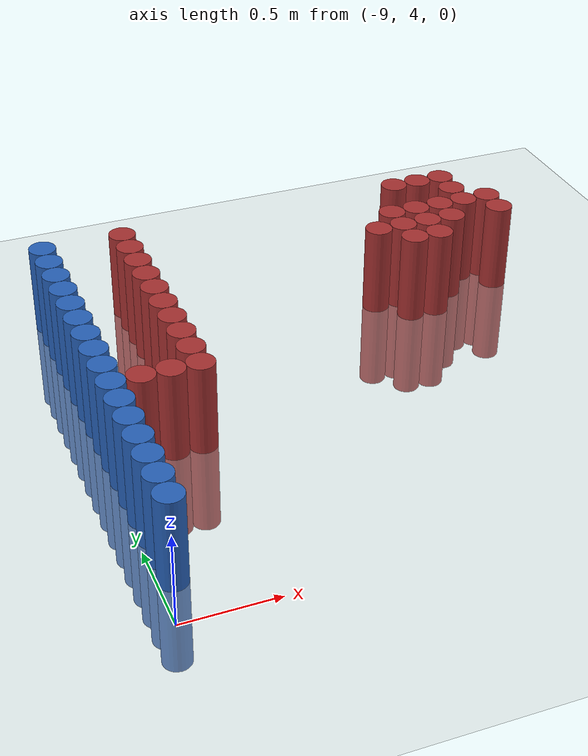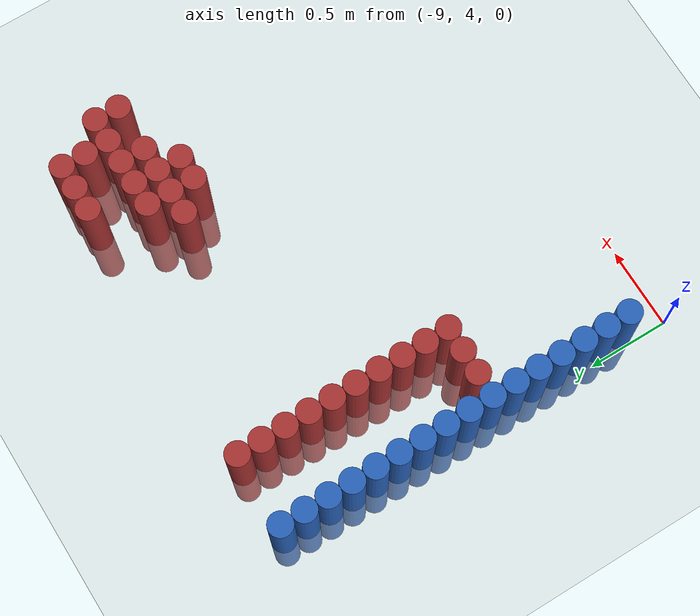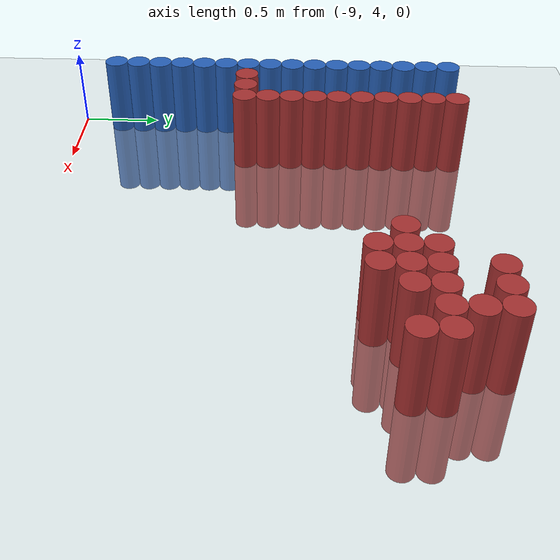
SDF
<sdf version="1.6">
 <world name="default">
  <model name="ground_plane">
   <static>1</static>
   <link name="link">
    <collision name="collision">
     <geometry><plane><normal>0 0 1</normal><size>100 100</size></plane></geometry>
     <surface><friction><ode><mu>100</mu><mu2>50</mu2></ode></friction></surface>
    </collision>
    <visual name="visual">
     <cast_shadows>0</cast_shadows>
     <geometry><plane><normal>0 0 1</normal><size>100 100</size></plane></geometry>
     <material>
      <script><uri>file://media/materials/scripts/gazebo.material</uri><name>Gazebo/Grey</name></script>
     </material>
    </visual>
   </link>
  </model>
  <model name="unit_cylinder_114">
   <static>1</static>
   <pose>-8.925000 4.275000 0.000000 0.000000 0.000000 0.000000</pose>
   <link name="link">
    <inertial>
     <mass>1</mass>
     <inertia><ixx>0.145833</ixx><ixy>0</ixy><ixz>0</ixz><iyy>0.145833</iyy><iyz>0</iyz><izz>0.125</izz></inertia>
    </inertial>
    <collision name="collision">
     <geometry><cylinder><radius>0.075000</radius><length>1</length></cylinder></geometry>
    </collision>
    <visual name="visual">
     <geometry><cylinder><radius>0.075000</radius><length>1</length></cylinder></geometry>
     <material>
      <ambient>0.152000 0.379000 0.720000 1</ambient>
      <diffuse>0.152000 0.379000 0.720000 1</diffuse>
     </material>
     <material>
      <script><name>Gazebo/Grey</name><uri>file://media/materials/scripts/gazebo.material</uri></script>
     </material>
    </visual>
   </link>
  </model>
  <model name="unit_cylinder_116">
   <static>1</static>
   <pose>-8.925000 4.425000 0.000000 0.000000 0.000000 0.000000</pose>
   <link name="link">
    <inertial>
     <mass>1</mass>
     <inertia><ixx>0.145833</ixx><ixy>0</ixy><ixz>0</ixz><iyy>0.145833</iyy><iyz>0</iyz><izz>0.125</izz></inertia>
    </inertial>
    <collision name="collision">
     <geometry><cylinder><radius>0.075000</radius><length>1</length></cylinder></geometry>
    </collision>
    <visual name="visual">
     <geometry><cylinder><radius>0.075000</radius><length>1</length></cylinder></geometry>
     <material>
      <ambient>0.152000 0.379000 0.720000 1</ambient>
      <diffuse>0.152000 0.379000 0.720000 1</diffuse>
     </material>
     <material>
      <script><name>Gazebo/Grey</name><uri>file://media/materials/scripts/gazebo.material</uri></script>
     </material>
    </visual>
   </link>
  </model>
  <model name="unit_cylinder_118">
   <static>1</static>
   <pose>-8.925000 4.575000 0.000000 0.000000 0.000000 0.000000</pose>
   <link name="link">
    <inertial>
     <mass>1</mass>
     <inertia><ixx>0.145833</ixx><ixy>0</ixy><ixz>0</ixz><iyy>0.145833</iyy><iyz>0</iyz><izz>0.125</izz></inertia>
    </inertial>
    <collision name="collision">
     <geometry><cylinder><radius>0.075000</radius><length>1</length></cylinder></geometry>
    </collision>
    <visual name="visual">
     <geometry><cylinder><radius>0.075000</radius><length>1</length></cylinder></geometry>
     <material>
      <ambient>0.152000 0.379000 0.720000 1</ambient>
      <diffuse>0.152000 0.379000 0.720000 1</diffuse>
     </material>
     <material>
      <script><name>Gazebo/Grey</name><uri>file://media/materials/scripts/gazebo.material</uri></script>
     </material>
    </visual>
   </link>
  </model>
  <model name="unit_cylinder_120">
   <static>1</static>
   <pose>-8.925000 4.725000 0.000000 0.000000 0.000000 0.000000</pose>
   <link name="link">
    <inertial>
     <mass>1</mass>
     <inertia><ixx>0.145833</ixx><ixy>0</ixy><ixz>0</ixz><iyy>0.145833</iyy><iyz>0</iyz><izz>0.125</izz></inertia>
    </inertial>
    <collision name="collision">
     <geometry><cylinder><radius>0.075000</radius><length>1</length></cylinder></geometry>
    </collision>
    <visual name="visual">
     <geometry><cylinder><radius>0.075000</radius><length>1</length></cylinder></geometry>
     <material>
      <ambient>0.152000 0.379000 0.720000 1</ambient>
      <diffuse>0.152000 0.379000 0.720000 1</diffuse>
     </material>
     <material>
      <script><name>Gazebo/Grey</name><uri>file://media/materials/scripts/gazebo.material</uri></script>
     </material>
    </visual>
   </link>
  </model>
  <model name="unit_cylinder_122">
   <static>1</static>
   <pose>-8.925000 4.875000 0.000000 0.000000 0.000000 0.000000</pose>
   <link name="link">
    <inertial>
     <mass>1</mass>
     <inertia><ixx>0.145833</ixx><ixy>0</ixy><ixz>0</ixz><iyy>0.145833</iyy><iyz>0</iyz><izz>0.125</izz></inertia>
    </inertial>
    <collision name="collision">
     <geometry><cylinder><radius>0.075000</radius><length>1</length></cylinder></geometry>
    </collision>
    <visual name="visual">
     <geometry><cylinder><radius>0.075000</radius><length>1</length></cylinder></geometry>
     <material>
      <ambient>0.152000 0.379000 0.720000 1</ambient>
      <diffuse>0.152000 0.379000 0.720000 1</diffuse>
     </material>
     <material>
      <script><name>Gazebo/Grey</name><uri>file://media/materials/scripts/gazebo.material</uri></script>
     </material>
    </visual>
   </link>
  </model>
  <model name="unit_cylinder_124">
   <static>1</static>
   <pose>-8.925000 5.025000 0.000000 0.000000 0.000000 0.000000</pose>
   <link name="link">
    <inertial>
     <mass>1</mass>
     <inertia><ixx>0.145833</ixx><ixy>0</ixy><ixz>0</ixz><iyy>0.145833</iyy><iyz>0</iyz><izz>0.125</izz></inertia>
    </inertial>
    <collision name="collision">
     <geometry><cylinder><radius>0.075000</radius><length>1</length></cylinder></geometry>
    </collision>
    <visual name="visual">
     <geometry><cylinder><radius>0.075000</radius><length>1</length></cylinder></geometry>
     <material>
      <ambient>0.152000 0.379000 0.720000 1</ambient>
      <diffuse>0.152000 0.379000 0.720000 1</diffuse>
     </material>
     <material>
      <script><name>Gazebo/Grey</name><uri>file://media/materials/scripts/gazebo.material</uri></script>
     </material>
    </visual>
   </link>
  </model>
  <model name="unit_cylinder_125">
   <static>1</static>
   <pose>-8.925000 5.175000 0.000000 0.000000 0.000000 0.000000</pose>
   <link name="link">
    <inertial>
     <mass>1</mass>
     <inertia><ixx>0.145833</ixx><ixy>0</ixy><ixz>0</ixz><iyy>0.145833</iyy><iyz>0</iyz><izz>0.125</izz></inertia>
    </inertial>
    <collision name="collision">
     <geometry><cylinder><radius>0.075000</radius><length>1</length></cylinder></geometry>
    </collision>
    <visual name="visual">
     <geometry><cylinder><radius>0.075000</radius><length>1</length></cylinder></geometry>
     <material>
      <ambient>0.152000 0.379000 0.720000 1</ambient>
      <diffuse>0.152000 0.379000 0.720000 1</diffuse>
     </material>
     <material>
      <script><name>Gazebo/Grey</name><uri>file://media/materials/scripts/gazebo.material</uri></script>
     </material>
    </visual>
   </link>
  </model>
  <model name="unit_cylinder_126">
   <static>1</static>
   <pose>-8.925000 5.325000 0.000000 0.000000 0.000000 0.000000</pose>
   <link name="link">
    <inertial>
     <mass>1</mass>
     <inertia><ixx>0.145833</ixx><ixy>0</ixy><ixz>0</ixz><iyy>0.145833</iyy><iyz>0</iyz><izz>0.125</izz></inertia>
    </inertial>
    <collision name="collision">
     <geometry><cylinder><radius>0.075000</radius><length>1</length></cylinder></geometry>
    </collision>
    <visual name="visual">
     <geometry><cylinder><radius>0.075000</radius><length>1</length></cylinder></geometry>
     <material>
      <ambient>0.152000 0.379000 0.720000 1</ambient>
      <diffuse>0.152000 0.379000 0.720000 1</diffuse>
     </material>
     <material>
      <script><name>Gazebo/Grey</name><uri>file://media/materials/scripts/gazebo.material</uri></script>
     </material>
    </visual>
   </link>
  </model>
  <model name="unit_cylinder_127">
   <static>1</static>
   <pose>-8.925000 5.475000 0.000000 0.000000 0.000000 0.000000</pose>
   <link name="link">
    <inertial>
     <mass>1</mass>
     <inertia><ixx>0.145833</ixx><ixy>0</ixy><ixz>0</ixz><iyy>0.145833</iyy><iyz>0</iyz><izz>0.125</izz></inertia>
    </inertial>
    <collision name="collision">
     <geometry><cylinder><radius>0.075000</radius><length>1</length></cylinder></geometry>
    </collision>
    <visual name="visual">
     <geometry><cylinder><radius>0.075000</radius><length>1</length></cylinder></geometry>
     <material>
      <ambient>0.152000 0.379000 0.720000 1</ambient>
      <diffuse>0.152000 0.379000 0.720000 1</diffuse>
     </material>
     <material>
      <script><name>Gazebo/Grey</name><uri>file://media/materials/scripts/gazebo.material</uri></script>
     </material>
    </visual>
   </link>
  </model>
  <model name="unit_cylinder_128">
   <static>1</static>
   <pose>-8.925000 5.625000 0.000000 0.000000 0.000000 0.000000</pose>
   <link name="link">
    <inertial>
     <mass>1</mass>
     <inertia><ixx>0.145833</ixx><ixy>0</ixy><ixz>0</ixz><iyy>0.145833</iyy><iyz>0</iyz><izz>0.125</izz></inertia>
    </inertial>
    <collision name="collision">
     <geometry><cylinder><radius>0.075000</radius><length>1</length></cylinder></geometry>
    </collision>
    <visual name="visual">
     <geometry><cylinder><radius>0.075000</radius><length>1</length></cylinder></geometry>
     <material>
      <ambient>0.152000 0.379000 0.720000 1</ambient>
      <diffuse>0.152000 0.379000 0.720000 1</diffuse>
     </material>
     <material>
      <script><name>Gazebo/Grey</name><uri>file://media/materials/scripts/gazebo.material</uri></script>
     </material>
    </visual>
   </link>
  </model>
  <model name="unit_cylinder_129">
   <static>1</static>
   <pose>-8.925000 5.775000 0.000000 0.000000 0.000000 0.000000</pose>
   <link name="link">
    <inertial>
     <mass>1</mass>
     <inertia><ixx>0.145833</ixx><ixy>0</ixy><ixz>0</ixz><iyy>0.145833</iyy><iyz>0</iyz><izz>0.125</izz></inertia>
    </inertial>
    <collision name="collision">
     <geometry><cylinder><radius>0.075000</radius><length>1</length></cylinder></geometry>
    </collision>
    <visual name="visual">
     <geometry><cylinder><radius>0.075000</radius><length>1</length></cylinder></geometry>
     <material>
      <ambient>0.152000 0.379000 0.720000 1</ambient>
      <diffuse>0.152000 0.379000 0.720000 1</diffuse>
     </material>
     <material>
      <script><name>Gazebo/Grey</name><uri>file://media/materials/scripts/gazebo.material</uri></script>
     </material>
    </visual>
   </link>
  </model>
  <model name="unit_cylinder_130">
   <static>1</static>
   <pose>-8.925000 5.925000 0.000000 0.000000 0.000000 0.000000</pose>
   <link name="link">
    <inertial>
     <mass>1</mass>
     <inertia><ixx>0.145833</ixx><ixy>0</ixy><ixz>0</ixz><iyy>0.145833</iyy><iyz>0</iyz><izz>0.125</izz></inertia>
    </inertial>
    <collision name="collision">
     <geometry><cylinder><radius>0.075000</radius><length>1</length></cylinder></geometry>
    </collision>
    <visual name="visual">
     <geometry><cylinder><radius>0.075000</radius><length>1</length></cylinder></geometry>
     <material>
      <ambient>0.152000 0.379000 0.720000 1</ambient>
      <diffuse>0.152000 0.379000 0.720000 1</diffuse>
     </material>
     <material>
      <script><name>Gazebo/Grey</name><uri>file://media/materials/scripts/gazebo.material</uri></script>
     </material>
    </visual>
   </link>
  </model>
  <model name="unit_cylinder_131">
   <static>1</static>
   <pose>-8.925000 6.075000 0.000000 0.000000 0.000000 0.000000</pose>
   <link name="link">
    <inertial>
     <mass>1</mass>
     <inertia><ixx>0.145833</ixx><ixy>0</ixy><ixz>0</ixz><iyy>0.145833</iyy><iyz>0</iyz><izz>0.125</izz></inertia>
    </inertial>
    <collision name="collision">
     <geometry><cylinder><radius>0.075000</radius><length>1</length></cylinder></geometry>
    </collision>
    <visual name="visual">
     <geometry><cylinder><radius>0.075000</radius><length>1</length></cylinder></geometry>
     <material>
      <ambient>0.152000 0.379000 0.720000 1</ambient>
      <diffuse>0.152000 0.379000 0.720000 1</diffuse>
     </material>
     <material>
      <script><name>Gazebo/Grey</name><uri>file://media/materials/scripts/gazebo.material</uri></script>
     </material>
    </visual>
   </link>
  </model>
  <model name="unit_cylinder_132">
   <static>1</static>
   <pose>-8.925000 6.225000 0.000000 0.000000 0.000000 0.000000</pose>
   <link name="link">
    <inertial>
     <mass>1</mass>
     <inertia><ixx>0.145833</ixx><ixy>0</ixy><ixz>0</ixz><iyy>0.145833</iyy><iyz>0</iyz><izz>0.125</izz></inertia>
    </inertial>
    <collision name="collision">
     <geometry><cylinder><radius>0.075000</radius><length>1</length></cylinder></geometry>
    </collision>
    <visual name="visual">
     <geometry><cylinder><radius>0.075000</radius><length>1</length></cylinder></geometry>
     <material>
      <ambient>0.152000 0.379000 0.720000 1</ambient>
      <diffuse>0.152000 0.379000 0.720000 1</diffuse>
     </material>
     <material>
      <script><name>Gazebo/Grey</name><uri>file://media/materials/scripts/gazebo.material</uri></script>
     </material>
    </visual>
   </link>
  </model>
  <model name="unit_cylinder_133">
   <static>1</static>
   <pose>-8.925000 6.375000 0.000000 0.000000 0.000000 0.000000</pose>
   <link name="link">
    <inertial>
     <mass>1</mass>
     <inertia><ixx>0.145833</ixx><ixy>0</ixy><ixz>0</ixz><iyy>0.145833</iyy><iyz>0</iyz><izz>0.125</izz></inertia>
    </inertial>
    <collision name="collision">
     <geometry><cylinder><radius>0.075000</radius><length>1</length></cylinder></geometry>
    </collision>
    <visual name="visual">
     <geometry><cylinder><radius>0.075000</radius><length>1</length></cylinder></geometry>
     <material>
      <ambient>0.152000 0.379000 0.720000 1</ambient>
      <diffuse>0.152000 0.379000 0.720000 1</diffuse>
     </material>
     <material>
      <script><name>Gazebo/Grey</name><uri>file://media/materials/scripts/gazebo.material</uri></script>
     </material>
    </visual>
   </link>
  </model>
  <model name="unit_cylinder_134">
   <static>1</static>
   <pose>-8.925000 6.525000 0.000000 0.000000 0.000000 0.000000</pose>
   <link name="link">
    <inertial>
     <mass>1</mass>
     <inertia><ixx>0.145833</ixx><ixy>0</ixy><ixz>0</ixz><iyy>0.145833</iyy><iyz>0</iyz><izz>0.125</izz></inertia>
    </inertial>
    <collision name="collision">
     <geometry><cylinder><radius>0.075000</radius><length>1</length></cylinder></geometry>
    </collision>
    <visual name="visual">
     <geometry><cylinder><radius>0.075000</radius><length>1</length></cylinder></geometry>
     <material>
      <ambient>0.152000 0.379000 0.720000 1</ambient>
      <diffuse>0.152000 0.379000 0.720000 1</diffuse>
     </material>
     <material>
      <script><name>Gazebo/Grey</name><uri>file://media/materials/scripts/gazebo.material</uri></script>
     </material>
    </visual>
   </link>
  </model>
  <model name="unit_cylinder_155">
   <static>1</static>
   <pose>-8.775000 5.175000 0.000000 0.000000 0.000000 0.000000</pose>
   <link name="link">
    <inertial>
     <mass>1</mass>
     <inertia><ixx>0.145833</ixx><ixy>0</ixy><ixz>0</ixz><iyy>0.145833</iyy><iyz>0</iyz><izz>0.125</izz></inertia>
    </inertial>
    <collision name="collision">
     <geometry><cylinder><radius>0.075000</radius><length>1</length></cylinder></geometry>
    </collision>
    <visual name="visual">
     <geometry><cylinder><radius>0.075000</radius><length>1</length></cylinder></geometry>
     <material>
      <ambient>0.648000 0.192000 0.192000 1</ambient>
      <diffuse>0.648000 0.192000 0.192000 1</diffuse>
     </material>
     <material>
      <script><name>Gazebo/Grey</name><uri>file://media/materials/scripts/gazebo.material</uri></script>
     </material>
    </visual>
   </link>
  </model>
  <model name="unit_cylinder_157">
   <static>1</static>
   <pose>-8.625000 5.175000 0.000000 0.000000 0.000000 0.000000</pose>
   <link name="link">
    <inertial>
     <mass>1</mass>
     <inertia><ixx>0.145833</ixx><ixy>0</ixy><ixz>0</ixz><iyy>0.145833</iyy><iyz>0</iyz><izz>0.125</izz></inertia>
    </inertial>
    <collision name="collision">
     <geometry><cylinder><radius>0.075000</radius><length>1</length></cylinder></geometry>
    </collision>
    <visual name="visual">
     <geometry><cylinder><radius>0.075000</radius><length>1</length></cylinder></geometry>
     <material>
      <ambient>0.648000 0.192000 0.192000 1</ambient>
      <diffuse>0.648000 0.192000 0.192000 1</diffuse>
     </material>
     <material>
      <script><name>Gazebo/Grey</name><uri>file://media/materials/scripts/gazebo.material</uri></script>
     </material>
    </visual>
   </link>
  </model>
  <model name="unit_cylinder_159">
   <static>1</static>
   <pose>-8.475000 5.175000 0.000000 0.000000 0.000000 0.000000</pose>
   <link name="link">
    <inertial>
     <mass>1</mass>
     <inertia><ixx>0.145833</ixx><ixy>0</ixy><ixz>0</ixz><iyy>0.145833</iyy><iyz>0</iyz><izz>0.125</izz></inertia>
    </inertial>
    <collision name="collision">
     <geometry><cylinder><radius>0.075000</radius><length>1</length></cylinder></geometry>
    </collision>
    <visual name="visual">
     <geometry><cylinder><radius>0.075000</radius><length>1</length></cylinder></geometry>
     <material>
      <ambient>0.648000 0.192000 0.192000 1</ambient>
      <diffuse>0.648000 0.192000 0.192000 1</diffuse>
     </material>
     <material>
      <script><name>Gazebo/Grey</name><uri>file://media/materials/scripts/gazebo.material</uri></script>
     </material>
    </visual>
   </link>
  </model>
  <model name="unit_cylinder_160">
   <static>1</static>
   <pose>-8.475000 5.325000 0.000000 0.000000 0.000000 0.000000</pose>
   <link name="link">
    <inertial>
     <mass>1</mass>
     <inertia><ixx>0.145833</ixx><ixy>0</ixy><ixz>0</ixz><iyy>0.145833</iyy><iyz>0</iyz><izz>0.125</izz></inertia>
    </inertial>
    <collision name="collision">
     <geometry><cylinder><radius>0.075000</radius><length>1</length></cylinder></geometry>
    </collision>
    <visual name="visual">
     <geometry><cylinder><radius>0.075000</radius><length>1</length></cylinder></geometry>
     <material>
      <ambient>0.648000 0.192000 0.192000 1</ambient>
      <diffuse>0.648000 0.192000 0.192000 1</diffuse>
     </material>
     <material>
      <script><name>Gazebo/Grey</name><uri>file://media/materials/scripts/gazebo.material</uri></script>
     </material>
    </visual>
   </link>
  </model>
  <model name="unit_cylinder_161">
   <static>1</static>
   <pose>-8.475000 5.475000 0.000000 0.000000 0.000000 0.000000</pose>
   <link name="link">
    <inertial>
     <mass>1</mass>
     <inertia><ixx>0.145833</ixx><ixy>0</ixy><ixz>0</ixz><iyy>0.145833</iyy><iyz>0</iyz><izz>0.125</izz></inertia>
    </inertial>
    <collision name="collision">
     <geometry><cylinder><radius>0.075000</radius><length>1</length></cylinder></geometry>
    </collision>
    <visual name="visual">
     <geometry><cylinder><radius>0.075000</radius><length>1</length></cylinder></geometry>
     <material>
      <ambient>0.648000 0.192000 0.192000 1</ambient>
      <diffuse>0.648000 0.192000 0.192000 1</diffuse>
     </material>
     <material>
      <script><name>Gazebo/Grey</name><uri>file://media/materials/scripts/gazebo.material</uri></script>
     </material>
    </visual>
   </link>
  </model>
  <model name="unit_cylinder_162">
   <static>1</static>
   <pose>-8.475000 5.625000 0.000000 0.000000 0.000000 0.000000</pose>
   <link name="link">
    <inertial>
     <mass>1</mass>
     <inertia><ixx>0.145833</ixx><ixy>0</ixy><ixz>0</ixz><iyy>0.145833</iyy><iyz>0</iyz><izz>0.125</izz></inertia>
    </inertial>
    <collision name="collision">
     <geometry><cylinder><radius>0.075000</radius><length>1</length></cylinder></geometry>
    </collision>
    <visual name="visual">
     <geometry><cylinder><radius>0.075000</radius><length>1</length></cylinder></geometry>
     <material>
      <ambient>0.648000 0.192000 0.192000 1</ambient>
      <diffuse>0.648000 0.192000 0.192000 1</diffuse>
     </material>
     <material>
      <script><name>Gazebo/Grey</name><uri>file://media/materials/scripts/gazebo.material</uri></script>
     </material>
    </visual>
   </link>
  </model>
  <model name="unit_cylinder_163">
   <static>1</static>
   <pose>-8.475000 5.775000 0.000000 0.000000 0.000000 0.000000</pose>
   <link name="link">
    <inertial>
     <mass>1</mass>
     <inertia><ixx>0.145833</ixx><ixy>0</ixy><ixz>0</ixz><iyy>0.145833</iyy><iyz>0</iyz><izz>0.125</izz></inertia>
    </inertial>
    <collision name="collision">
     <geometry><cylinder><radius>0.075000</radius><length>1</length></cylinder></geometry>
    </collision>
    <visual name="visual">
     <geometry><cylinder><radius>0.075000</radius><length>1</length></cylinder></geometry>
     <material>
      <ambient>0.648000 0.192000 0.192000 1</ambient>
      <diffuse>0.648000 0.192000 0.192000 1</diffuse>
     </material>
     <material>
      <script><name>Gazebo/Grey</name><uri>file://media/materials/scripts/gazebo.material</uri></script>
     </material>
    </visual>
   </link>
  </model>
  <model name="unit_cylinder_164">
   <static>1</static>
   <pose>-8.475000 5.925000 0.000000 0.000000 0.000000 0.000000</pose>
   <link name="link">
    <inertial>
     <mass>1</mass>
     <inertia><ixx>0.145833</ixx><ixy>0</ixy><ixz>0</ixz><iyy>0.145833</iyy><iyz>0</iyz><izz>0.125</izz></inertia>
    </inertial>
    <collision name="collision">
     <geometry><cylinder><radius>0.075000</radius><length>1</length></cylinder></geometry>
    </collision>
    <visual name="visual">
     <geometry><cylinder><radius>0.075000</radius><length>1</length></cylinder></geometry>
     <material>
      <ambient>0.648000 0.192000 0.192000 1</ambient>
      <diffuse>0.648000 0.192000 0.192000 1</diffuse>
     </material>
     <material>
      <script><name>Gazebo/Grey</name><uri>file://media/materials/scripts/gazebo.material</uri></script>
     </material>
    </visual>
   </link>
  </model>
  <model name="unit_cylinder_165">
   <static>1</static>
   <pose>-8.475000 6.075000 0.000000 0.000000 0.000000 0.000000</pose>
   <link name="link">
    <inertial>
     <mass>1</mass>
     <inertia><ixx>0.145833</ixx><ixy>0</ixy><ixz>0</ixz><iyy>0.145833</iyy><iyz>0</iyz><izz>0.125</izz></inertia>
    </inertial>
    <collision name="collision">
     <geometry><cylinder><radius>0.075000</radius><length>1</length></cylinder></geometry>
    </collision>
    <visual name="visual">
     <geometry><cylinder><radius>0.075000</radius><length>1</length></cylinder></geometry>
     <material>
      <ambient>0.648000 0.192000 0.192000 1</ambient>
      <diffuse>0.648000 0.192000 0.192000 1</diffuse>
     </material>
     <material>
      <script><name>Gazebo/Grey</name><uri>file://media/materials/scripts/gazebo.material</uri></script>
     </material>
    </visual>
   </link>
  </model>
  <model name="unit_cylinder_166">
   <static>1</static>
   <pose>-8.475000 6.225000 0.000000 0.000000 0.000000 0.000000</pose>
   <link name="link">
    <inertial>
     <mass>1</mass>
     <inertia><ixx>0.145833</ixx><ixy>0</ixy><ixz>0</ixz><iyy>0.145833</iyy><iyz>0</iyz><izz>0.125</izz></inertia>
    </inertial>
    <collision name="collision">
     <geometry><cylinder><radius>0.075000</radius><length>1</length></cylinder></geometry>
    </collision>
    <visual name="visual">
     <geometry><cylinder><radius>0.075000</radius><length>1</length></cylinder></geometry>
     <material>
      <ambient>0.648000 0.192000 0.192000 1</ambient>
      <diffuse>0.648000 0.192000 0.192000 1</diffuse>
     </material>
     <material>
      <script><name>Gazebo/Grey</name><uri>file://media/materials/scripts/gazebo.material</uri></script>
     </material>
    </visual>
   </link>
  </model>
  <model name="unit_cylinder_167">
   <static>1</static>
   <pose>-8.475000 6.375000 0.000000 0.000000 0.000000 0.000000</pose>
   <link name="link">
    <inertial>
     <mass>1</mass>
     <inertia><ixx>0.145833</ixx><ixy>0</ixy><ixz>0</ixz><iyy>0.145833</iyy><iyz>0</iyz><izz>0.125</izz></inertia>
    </inertial>
    <collision name="collision">
     <geometry><cylinder><radius>0.075000</radius><length>1</length></cylinder></geometry>
    </collision>
    <visual name="visual">
     <geometry><cylinder><radius>0.075000</radius><length>1</length></cylinder></geometry>
     <material>
      <ambient>0.648000 0.192000 0.192000 1</ambient>
      <diffuse>0.648000 0.192000 0.192000 1</diffuse>
     </material>
     <material>
      <script><name>Gazebo/Grey</name><uri>file://media/materials/scripts/gazebo.material</uri></script>
     </material>
    </visual>
   </link>
  </model>
  <model name="unit_cylinder_168">
   <static>1</static>
   <pose>-8.475000 6.525000 0.000000 0.000000 0.000000 0.000000</pose>
   <link name="link">
    <inertial>
     <mass>1</mass>
     <inertia><ixx>0.145833</ixx><ixy>0</ixy><ixz>0</ixz><iyy>0.145833</iyy><iyz>0</iyz><izz>0.125</izz></inertia>
    </inertial>
    <collision name="collision">
     <geometry><cylinder><radius>0.075000</radius><length>1</length></cylinder></geometry>
    </collision>
    <visual name="visual">
     <geometry><cylinder><radius>0.075000</radius><length>1</length></cylinder></geometry>
     <material>
      <ambient>0.648000 0.192000 0.192000 1</ambient>
      <diffuse>0.648000 0.192000 0.192000 1</diffuse>
     </material>
     <material>
      <script><name>Gazebo/Grey</name><uri>file://media/materials/scripts/gazebo.material</uri></script>
     </material>
    </visual>
   </link>
  </model>
  <model name="unit_cylinder_201">
   <static>1</static>
   <pose>-7.125000 6.075000 0.000000 0.000000 0.000000 0.000000</pose>
   <link name="link">
    <inertial>
     <mass>1</mass>
     <inertia><ixx>0.145833</ixx><ixy>0</ixy><ixz>0</ixz><iyy>0.145833</iyy><iyz>0</iyz><izz>0.125</izz></inertia>
    </inertial>
    <collision name="collision">
     <geometry><cylinder><radius>0.075000</radius><length>1</length></cylinder></geometry>
    </collision>
    <visual name="visual">
     <geometry><cylinder><radius>0.075000</radius><length>1</length></cylinder></geometry>
     <material>
      <ambient>0.648000 0.192000 0.192000 1</ambient>
      <diffuse>0.648000 0.192000 0.192000 1</diffuse>
     </material>
     <material>
      <script><name>Gazebo/Grey</name><uri>file://media/materials/scripts/gazebo.material</uri></script>
     </material>
    </visual>
   </link>
  </model>
  <model name="unit_cylinder_203">
   <static>1</static>
   <pose>-6.975000 5.925000 0.000000 0.000000 0.000000 0.000000</pose>
   <link name="link">
    <inertial>
     <mass>1</mass>
     <inertia><ixx>0.145833</ixx><ixy>0</ixy><ixz>0</ixz><iyy>0.145833</iyy><iyz>0</iyz><izz>0.125</izz></inertia>
    </inertial>
    <collision name="collision">
     <geometry><cylinder><radius>0.075000</radius><length>1</length></cylinder></geometry>
    </collision>
    <visual name="visual">
     <geometry><cylinder><radius>0.075000</radius><length>1</length></cylinder></geometry>
     <material>
      <ambient>0.648000 0.192000 0.192000 1</ambient>
      <diffuse>0.648000 0.192000 0.192000 1</diffuse>
     </material>
     <material>
      <script><name>Gazebo/Grey</name><uri>file://media/materials/scripts/gazebo.material</uri></script>
     </material>
    </visual>
   </link>
  </model>
  <model name="unit_cylinder_204">
   <static>1</static>
   <pose>-6.975000 6.075000 0.000000 0.000000 0.000000 0.000000</pose>
   <link name="link">
    <inertial>
     <mass>1</mass>
     <inertia><ixx>0.145833</ixx><ixy>0</ixy><ixz>0</ixz><iyy>0.145833</iyy><iyz>0</iyz><izz>0.125</izz></inertia>
    </inertial>
    <collision name="collision">
     <geometry><cylinder><radius>0.075000</radius><length>1</length></cylinder></geometry>
    </collision>
    <visual name="visual">
     <geometry><cylinder><radius>0.075000</radius><length>1</length></cylinder></geometry>
     <material>
      <ambient>0.648000 0.192000 0.192000 1</ambient>
      <diffuse>0.648000 0.192000 0.192000 1</diffuse>
     </material>
     <material>
      <script><name>Gazebo/Grey</name><uri>file://media/materials/scripts/gazebo.material</uri></script>
     </material>
    </visual>
   </link>
  </model>
  <model name="unit_cylinder_205">
   <static>1</static>
   <pose>-6.975000 6.225000 0.000000 0.000000 0.000000 0.000000</pose>
   <link name="link">
    <inertial>
     <mass>1</mass>
     <inertia><ixx>0.145833</ixx><ixy>0</ixy><ixz>0</ixz><iyy>0.145833</iyy><iyz>0</iyz><izz>0.125</izz></inertia>
    </inertial>
    <collision name="collision">
     <geometry><cylinder><radius>0.075000</radius><length>1</length></cylinder></geometry>
    </collision>
    <visual name="visual">
     <geometry><cylinder><radius>0.075000</radius><length>1</length></cylinder></geometry>
     <material>
      <ambient>0.648000 0.192000 0.192000 1</ambient>
      <diffuse>0.648000 0.192000 0.192000 1</diffuse>
     </material>
     <material>
      <script><name>Gazebo/Grey</name><uri>file://media/materials/scripts/gazebo.material</uri></script>
     </material>
    </visual>
   </link>
  </model>
  <model name="unit_cylinder_209">
   <static>1</static>
   <pose>-6.825000 5.925000 0.000000 0.000000 0.000000 0.000000</pose>
   <link name="link">
    <inertial>
     <mass>1</mass>
     <inertia><ixx>0.145833</ixx><ixy>0</ixy><ixz>0</ixz><iyy>0.145833</iyy><iyz>0</iyz><izz>0.125</izz></inertia>
    </inertial>
    <collision name="collision">
     <geometry><cylinder><radius>0.075000</radius><length>1</length></cylinder></geometry>
    </collision>
    <visual name="visual">
     <geometry><cylinder><radius>0.075000</radius><length>1</length></cylinder></geometry>
     <material>
      <ambient>0.648000 0.192000 0.192000 1</ambient>
      <diffuse>0.648000 0.192000 0.192000 1</diffuse>
     </material>
     <material>
      <script><name>Gazebo/Grey</name><uri>file://media/materials/scripts/gazebo.material</uri></script>
     </material>
    </visual>
   </link>
  </model>
  <model name="unit_cylinder_210">
   <static>1</static>
   <pose>-6.825000 6.075000 0.000000 0.000000 0.000000 0.000000</pose>
   <link name="link">
    <inertial>
     <mass>1</mass>
     <inertia><ixx>0.145833</ixx><ixy>0</ixy><ixz>0</ixz><iyy>0.145833</iyy><iyz>0</iyz><izz>0.125</izz></inertia>
    </inertial>
    <collision name="collision">
     <geometry><cylinder><radius>0.075000</radius><length>1</length></cylinder></geometry>
    </collision>
    <visual name="visual">
     <geometry><cylinder><radius>0.075000</radius><length>1</length></cylinder></geometry>
     <material>
      <ambient>0.648000 0.192000 0.192000 1</ambient>
      <diffuse>0.648000 0.192000 0.192000 1</diffuse>
     </material>
     <material>
      <script><name>Gazebo/Grey</name><uri>file://media/materials/scripts/gazebo.material</uri></script>
     </material>
    </visual>
   </link>
  </model>
  <model name="unit_cylinder_211">
   <static>1</static>
   <pose>-6.825000 6.225000 0.000000 0.000000 0.000000 0.000000</pose>
   <link name="link">
    <inertial>
     <mass>1</mass>
     <inertia><ixx>0.145833</ixx><ixy>0</ixy><ixz>0</ixz><iyy>0.145833</iyy><iyz>0</iyz><izz>0.125</izz></inertia>
    </inertial>
    <collision name="collision">
     <geometry><cylinder><radius>0.075000</radius><length>1</length></cylinder></geometry>
    </collision>
    <visual name="visual">
     <geometry><cylinder><radius>0.075000</radius><length>1</length></cylinder></geometry>
     <material>
      <ambient>0.648000 0.192000 0.192000 1</ambient>
      <diffuse>0.648000 0.192000 0.192000 1</diffuse>
     </material>
     <material>
      <script><name>Gazebo/Grey</name><uri>file://media/materials/scripts/gazebo.material</uri></script>
     </material>
    </visual>
   </link>
  </model>
  <model name="unit_cylinder_212">
   <static>1</static>
   <pose>-6.825000 6.525000 0.000000 0.000000 0.000000 0.000000</pose>
   <link name="link">
    <inertial>
     <mass>1</mass>
     <inertia><ixx>0.145833</ixx><ixy>0</ixy><ixz>0</ixz><iyy>0.145833</iyy><iyz>0</iyz><izz>0.125</izz></inertia>
    </inertial>
    <collision name="collision">
     <geometry><cylinder><radius>0.075000</radius><length>1</length></cylinder></geometry>
    </collision>
    <visual name="visual">
     <geometry><cylinder><radius>0.075000</radius><length>1</length></cylinder></geometry>
     <material>
      <ambient>0.648000 0.192000 0.192000 1</ambient>
      <diffuse>0.648000 0.192000 0.192000 1</diffuse>
     </material>
     <material>
      <script><name>Gazebo/Grey</name><uri>file://media/materials/scripts/gazebo.material</uri></script>
     </material>
    </visual>
   </link>
  </model>
  <model name="unit_cylinder_215">
   <static>1</static>
   <pose>-6.675000 6.075000 0.000000 0.000000 0.000000 0.000000</pose>
   <link name="link">
    <inertial>
     <mass>1</mass>
     <inertia><ixx>0.145833</ixx><ixy>0</ixy><ixz>0</ixz><iyy>0.145833</iyy><iyz>0</iyz><izz>0.125</izz></inertia>
    </inertial>
    <collision name="collision">
     <geometry><cylinder><radius>0.075000</radius><length>1</length></cylinder></geometry>
    </collision>
    <visual name="visual">
     <geometry><cylinder><radius>0.075000</radius><length>1</length></cylinder></geometry>
     <material>
      <ambient>0.648000 0.192000 0.192000 1</ambient>
      <diffuse>0.648000 0.192000 0.192000 1</diffuse>
     </material>
     <material>
      <script><name>Gazebo/Grey</name><uri>file://media/materials/scripts/gazebo.material</uri></script>
     </material>
    </visual>
   </link>
  </model>
  <model name="unit_cylinder_216">
   <static>1</static>
   <pose>-6.675000 6.225000 0.000000 0.000000 0.000000 0.000000</pose>
   <link name="link">
    <inertial>
     <mass>1</mass>
     <inertia><ixx>0.145833</ixx><ixy>0</ixy><ixz>0</ixz><iyy>0.145833</iyy><iyz>0</iyz><izz>0.125</izz></inertia>
    </inertial>
    <collision name="collision">
     <geometry><cylinder><radius>0.075000</radius><length>1</length></cylinder></geometry>
    </collision>
    <visual name="visual">
     <geometry><cylinder><radius>0.075000</radius><length>1</length></cylinder></geometry>
     <material>
      <ambient>0.648000 0.192000 0.192000 1</ambient>
      <diffuse>0.648000 0.192000 0.192000 1</diffuse>
     </material>
     <material>
      <script><name>Gazebo/Grey</name><uri>file://media/materials/scripts/gazebo.material</uri></script>
     </material>
    </visual>
   </link>
  </model>
  <model name="unit_cylinder_217">
   <static>1</static>
   <pose>-6.675000 6.525000 0.000000 0.000000 0.000000 0.000000</pose>
   <link name="link">
    <inertial>
     <mass>1</mass>
     <inertia><ixx>0.145833</ixx><ixy>0</ixy><ixz>0</ixz><iyy>0.145833</iyy><iyz>0</iyz><izz>0.125</izz></inertia>
    </inertial>
    <collision name="collision">
     <geometry><cylinder><radius>0.075000</radius><length>1</length></cylinder></geometry>
    </collision>
    <visual name="visual">
     <geometry><cylinder><radius>0.075000</radius><length>1</length></cylinder></geometry>
     <material>
      <ambient>0.648000 0.192000 0.192000 1</ambient>
      <diffuse>0.648000 0.192000 0.192000 1</diffuse>
     </material>
     <material>
      <script><name>Gazebo/Grey</name><uri>file://media/materials/scripts/gazebo.material</uri></script>
     </material>
    </visual>
   </link>
  </model>
  <model name="unit_cylinder_219">
   <static>1</static>
   <pose>-6.525000 6.225000 0.000000 0.000000 0.000000 0.000000</pose>
   <link name="link">
    <inertial>
     <mass>1</mass>
     <inertia><ixx>0.145833</ixx><ixy>0</ixy><ixz>0</ixz><iyy>0.145833</iyy><iyz>0</iyz><izz>0.125</izz></inertia>
    </inertial>
    <collision name="collision">
     <geometry><cylinder><radius>0.075000</radius><length>1</length></cylinder></geometry>
    </collision>
    <visual name="visual">
     <geometry><cylinder><radius>0.075000</radius><length>1</length></cylinder></geometry>
     <material>
      <ambient>0.648000 0.192000 0.192000 1</ambient>
      <diffuse>0.648000 0.192000 0.192000 1</diffuse>
     </material>
     <material>
      <script><name>Gazebo/Grey</name><uri>file://media/materials/scripts/gazebo.material</uri></script>
     </material>
    </visual>
   </link>
  </model>
  <model name="unit_cylinder_220">
   <static>1</static>
   <pose>-6.525000 6.375000 0.000000 0.000000 0.000000 0.000000</pose>
   <link name="link">
    <inertial>
     <mass>1</mass>
     <inertia><ixx>0.145833</ixx><ixy>0</ixy><ixz>0</ixz><iyy>0.145833</iyy><iyz>0</iyz><izz>0.125</izz></inertia>
    </inertial>
    <collision name="collision">
     <geometry><cylinder><radius>0.075000</radius><length>1</length></cylinder></geometry>
    </collision>
    <visual name="visual">
     <geometry><cylinder><radius>0.075000</radius><length>1</length></cylinder></geometry>
     <material>
      <ambient>0.648000 0.192000 0.192000 1</ambient>
      <diffuse>0.648000 0.192000 0.192000 1</diffuse>
     </material>
     <material>
      <script><name>Gazebo/Grey</name><uri>file://media/materials/scripts/gazebo.material</uri></script>
     </material>
    </visual>
   </link>
  </model>
  <model name="unit_cylinder_221">
   <static>1</static>
   <pose>-6.525000 6.525000 0.000000 0.000000 0.000000 0.000000</pose>
   <link name="link">
    <inertial>
     <mass>1</mass>
     <inertia><ixx>0.145833</ixx><ixy>0</ixy><ixz>0</ixz><iyy>0.145833</iyy><iyz>0</iyz><izz>0.125</izz></inertia>
    </inertial>
    <collision name="collision">
     <geometry><cylinder><radius>0.075000</radius><length>1</length></cylinder></geometry>
    </collision>
    <visual name="visual">
     <geometry><cylinder><radius>0.075000</radius><length>1</length></cylinder></geometry>
     <material>
      <ambient>0.648000 0.192000 0.192000 1</ambient>
      <diffuse>0.648000 0.192000 0.192000 1</diffuse>
     </material>
     <material>
      <script><name>Gazebo/Grey</name><uri>file://media/materials/scripts/gazebo.material</uri></script>
     </material>
    </visual>
   </link>
  </model>
  <model name="unit_cylinder_225">
   <static>1</static>
   <pose>-6.375000 6.075000 0.000000 0.000000 0.000000 0.000000</pose>
   <link name="link">
    <inertial>
     <mass>1</mass>
     <inertia><ixx>0.145833</ixx><ixy>0</ixy><ixz>0</ixz><iyy>0.145833</iyy><iyz>0</iyz><izz>0.125</izz></inertia>
    </inertial>
    <collision name="collision">
     <geometry><cylinder><radius>0.075000</radius><length>1</length></cylinder></geometry>
    </collision>
    <visual name="visual">
     <geometry><cylinder><radius>0.075000</radius><length>1</length></cylinder></geometry>
     <material>
      <ambient>0.648000 0.192000 0.192000 1</ambient>
      <diffuse>0.648000 0.192000 0.192000 1</diffuse>
     </material>
     <material>
      <script><name>Gazebo/Grey</name><uri>file://media/materials/scripts/gazebo.material</uri></script>
     </material>
    </visual>
   </link>
  </model>
  <model name="unit_cylinder_226">
   <static>1</static>
   <pose>-6.375000 6.225000 0.000000 0.000000 0.000000 0.000000</pose>
   <link name="link">
    <inertial>
     <mass>1</mass>
     <inertia><ixx>0.145833</ixx><ixy>0</ixy><ixz>0</ixz><iyy>0.145833</iyy><iyz>0</iyz><izz>0.125</izz></inertia>
    </inertial>
    <collision name="collision">
     <geometry><cylinder><radius>0.075000</radius><length>1</length></cylinder></geometry>
    </collision>
    <visual name="visual">
     <geometry><cylinder><radius>0.075000</radius><length>1</length></cylinder></geometry>
     <material>
      <ambient>0.648000 0.192000 0.192000 1</ambient>
      <diffuse>0.648000 0.192000 0.192000 1</diffuse>
     </material>
     <material>
      <script><name>Gazebo/Grey</name><uri>file://media/materials/scripts/gazebo.material</uri></script>
     </material>
    </visual>
   </link>
  </model>
 </world>
</sdf>
